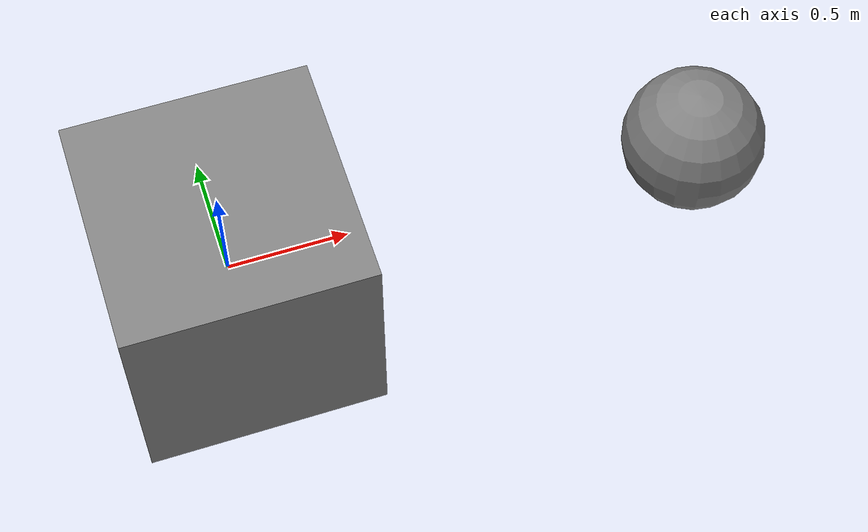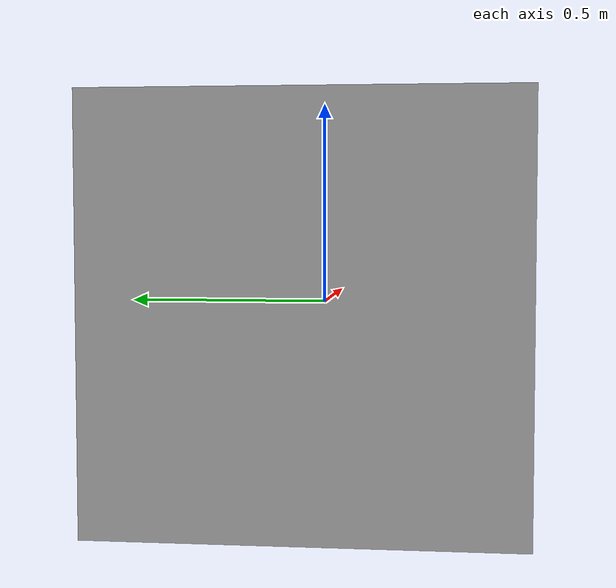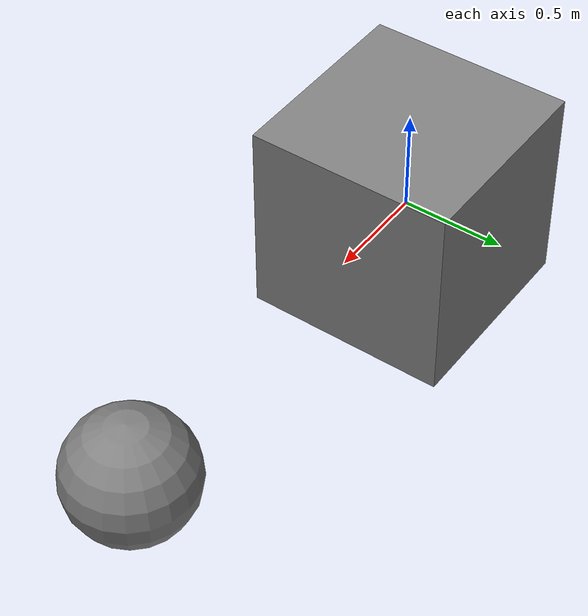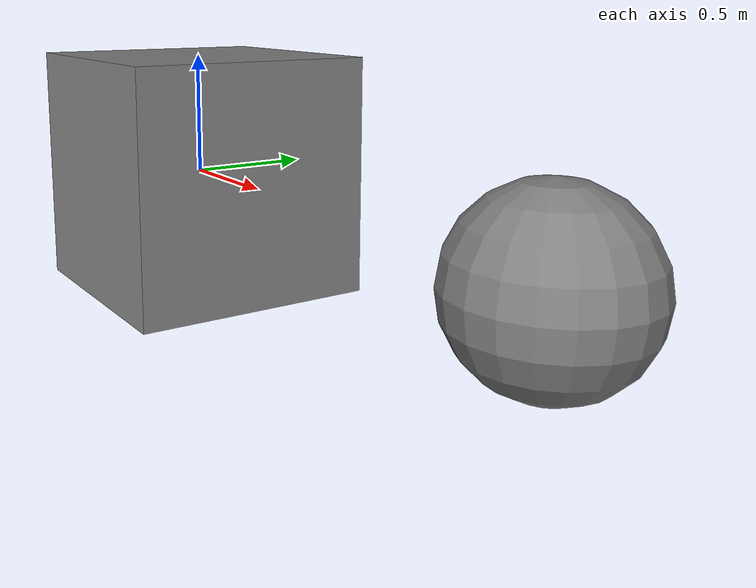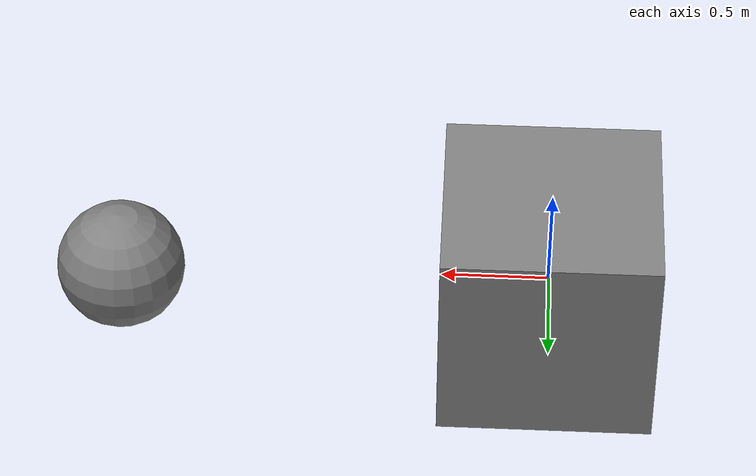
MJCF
<mujoco model="t28">
            <worldbody>
                <body name="b1" pos="0 0 0">
                    <geom name="g1" type="box" size="0.5 0.5 0.5" pos="0 0 0"/>
                </body>
                <body name="b2" pos="2 0 0">
                    <geom name="g2" type="sphere" size="0.3" pos="0 0 0"/>
                </body>
            </worldbody>
            <sensor>
                <distance name="d" geom1="g1" geom2="g2" cutoff="10"/>
            </sensor>
        </mujoco>
